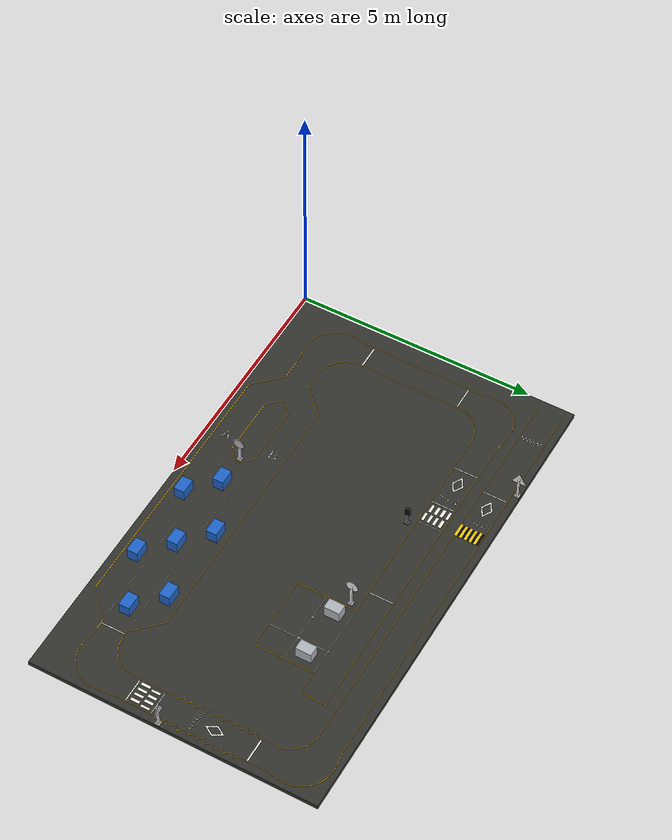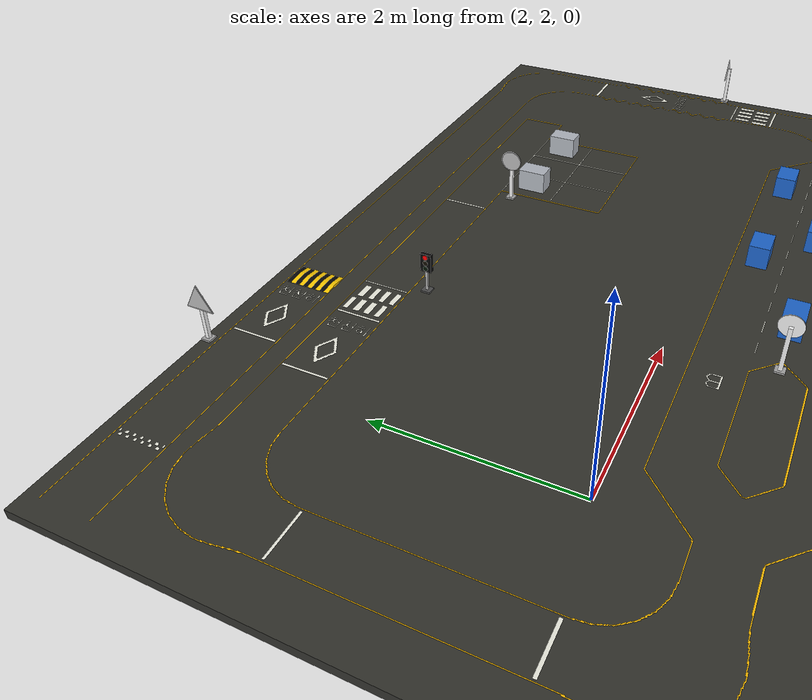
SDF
<sdf version="1.6">
 <world name="kudos_track_2026">
  <gravity>0 0 -9.81</gravity>
  <physics name="default_physics" type="ode">
   <max_step_size>0.001</max_step_size>
   <real_time_update_rate>1000</real_time_update_rate>
  </physics>
  <scene>
   <ambient>0.6 0.6 0.6 1</ambient>
   <background>0.75 0.80 0.85 1</background>
   <shadows>true</shadows>
  </scene>
  <light name="arena_sun" type="directional">
   <pose>0 0 10 0 0 0</pose>
   <diffuse>0.8 0.8 0.8 1</diffuse>
   <specular>0.2 0.2 0.2 1</specular>
   <direction>-0.3 -0.4 -1</direction>
  </light>
  <model name="arena_ground">
   <static>true</static>
   <pose>5.0 3.0 -0.05 0 0 0</pose>
   <link name="link">
    <visual name="visual">
     <geometry><box><size>10.0 6.0 0.1</size></box></geometry>
     <material><ambient>0.20 0.20 0.18 1</ambient><diffuse>0.20 0.20 0.18 1</diffuse></material>
    </visual>
    <collision name="collision"><geometry><box><size>10.0 6.0 0.1</size></box></geometry></collision>
   </link>
  </model>
  <model name="track_paint">
   <static>true</static>
   <pose>0 0 0.002 0 0 0</pose>
   <link name="paint_link">
    <visual name="yellow_paint">
     <cast_shadows>false</cast_shadows>
     <geometry><mesh><uri>model://track_paint/meshes/yellow.dae</uri></mesh></geometry>
    </visual>
    <visual name="white_paint">
     <cast_shadows>false</cast_shadows>
     <geometry><mesh><uri>model://track_paint/meshes/white.dae</uri></mesh></geometry>
    </visual>
   </link>
  </model>
  <model name="traffic_car_01">
   <static>true</static>
   <pose>8.1 0.95 0.1255 0 0 3.141592653589793</pose>
   <link name="link">
    <visual name="visual">
     <geometry><box><size>0.322 0.22 0.251</size></box></geometry>
     <material><ambient>0.12 0.40 0.80 1</ambient><diffuse>0.12 0.40 0.80 1</diffuse></material>
    </visual>
    <collision name="collision"><geometry><box><size>0.322 0.22 0.251</size></box></geometry></collision>
   </link>
  </model>
  <model name="traffic_car_02">
   <static>true</static>
   <pose>7.55 1.47 0.1255 0 0 3.141592653589793</pose>
   <link name="link">
    <visual name="visual">
     <geometry><box><size>0.322 0.22 0.251</size></box></geometry>
     <material><ambient>0.12 0.40 0.80 1</ambient><diffuse>0.12 0.40 0.80 1</diffuse></material>
    </visual>
    <collision name="collision"><geometry><box><size>0.322 0.22 0.251</size></box></geometry></collision>
   </link>
  </model>
  <model name="traffic_car_03">
   <static>true</static>
   <pose>7.0 0.43 0.1255 0 0 3.141592653589793</pose>
   <link name="link">
    <visual name="visual">
     <geometry><box><size>0.322 0.22 0.251</size></box></geometry>
     <material><ambient>0.12 0.40 0.80 1</ambient><diffuse>0.12 0.40 0.80 1</diffuse></material>
    </visual>
    <collision name="collision"><geometry><box><size>0.322 0.22 0.251</size></box></geometry></collision>
   </link>
  </model>
  <model name="traffic_car_04">
   <static>true</static>
   <pose>6.45 0.95 0.1255 0 0 3.141592653589793</pose>
   <link name="link">
    <visual name="visual">
     <geometry><box><size>0.322 0.22 0.251</size></box></geometry>
     <material><ambient>0.12 0.40 0.80 1</ambient><diffuse>0.12 0.40 0.80 1</diffuse></material>
    </visual>
    <collision name="collision"><geometry><box><size>0.322 0.22 0.251</size></box></geometry></collision>
   </link>
  </model>
  <model name="traffic_car_05">
   <static>true</static>
   <pose>5.9 1.47 0.1255 0 0 3.141592653589793</pose>
   <link name="link">
    <visual name="visual">
     <geometry><box><size>0.322 0.22 0.251</size></box></geometry>
     <material><ambient>0.12 0.40 0.80 1</ambient><diffuse>0.12 0.40 0.80 1</diffuse></material>
    </visual>
    <collision name="collision"><geometry><box><size>0.322 0.22 0.251</size></box></geometry></collision>
   </link>
  </model>
  <model name="traffic_car_06">
   <static>true</static>
   <pose>5.35 0.43 0.1255 0 0 3.141592653589793</pose>
   <link name="link">
    <visual name="visual">
     <geometry><box><size>0.322 0.22 0.251</size></box></geometry>
     <material><ambient>0.12 0.40 0.80 1</ambient><diffuse>0.12 0.40 0.80 1</diffuse></material>
    </visual>
    <collision name="collision"><geometry><box><size>0.322 0.22 0.251</size></box></geometry></collision>
   </link>
  </model>
  <model name="traffic_car_07">
   <static>true</static>
   <pose>4.8 0.95 0.1255 0 0 3.141592653589793</pose>
   <link name="link">
    <visual name="visual">
     <geometry><box><size>0.322 0.22 0.251</size></box></geometry>
     <material><ambient>0.12 0.40 0.80 1</ambient><diffuse>0.12 0.40 0.80 1</diffuse></material>
    </visual>
    <collision name="collision"><geometry><box><size>0.322 0.22 0.251</size></box></geometry></collision>
   </link>
  </model>
  <model name="parking_car_left">
   <static>true</static>
   <pose>6.36 4.27 0.1255 0 0 -1.5707963267948966</pose>
   <link name="link">
    <visual name="visual">
     <geometry><box><size>0.322 0.22 0.251</size></box></geometry>
     <material><ambient>0.70 0.72 0.75 1</ambient><diffuse>0.70 0.72 0.75 1</diffuse></material>
    </visual>
    <collision name="collision"><geometry><box><size>0.322 0.22 0.251</size></box></geometry></collision>
   </link>
  </model>
  <model name="parking_car_right">
   <static>true</static>
   <pose>7.39 4.27 0.1255 0 0 -1.5707963267948966</pose>
   <link name="link">
    <visual name="visual">
     <geometry><box><size>0.322 0.22 0.251</size></box></geometry>
     <material><ambient>0.70 0.72 0.75 1</ambient><diffuse>0.70 0.72 0.75 1</diffuse></material>
    </visual>
    <collision name="collision"><geometry><box><size>0.322 0.22 0.251</size></box></geometry></collision>
   </link>
  </model>
  <model name="branch_sign_base">
   <static>true</static>
   <pose>4.15 0.95 0.01 0 0 0</pose>
   <link name="link">
    <visual name="visual">
     <geometry><box><size>0.1 0.1 0.02</size></box></geometry>
     <material><ambient>0.65 0.65 0.65 1</ambient><diffuse>0.65 0.65 0.65 1</diffuse></material>
    </visual>
    <collision name="collision"><geometry><box><size>0.1 0.1 0.02</size></box></geometry></collision>
   </link>
  </model>
  <model name="branch_sign_pole">
   <static>true</static>
   <pose>4.15 0.95 0.26 0 0 0</pose>
   <link name="link">
    <visual name="visual">
     <geometry><box><size>0.04 0.04 0.48</size></box></geometry>
     <material><ambient>0.95 0.95 0.95 1</ambient><diffuse>0.95 0.95 0.95 1</diffuse></material>
    </visual>
    <collision name="collision"><geometry><box><size>0.04 0.04 0.48</size></box></geometry></collision>
   </link>
  </model>
  <model name="parking_sign_base">
   <static>true</static>
   <pose>6.0 4.42 0.01 0 0 0</pose>
   <link name="link">
    <visual name="visual">
     <geometry><box><size>0.1 0.1 0.02</size></box></geometry>
     <material><ambient>0.65 0.65 0.65 1</ambient><diffuse>0.65 0.65 0.65 1</diffuse></material>
    </visual>
    <collision name="collision"><geometry><box><size>0.1 0.1 0.02</size></box></geometry></collision>
   </link>
  </model>
  <model name="parking_sign_pole">
   <static>true</static>
   <pose>6.0 4.42 0.26 0 0 0</pose>
   <link name="link">
    <visual name="visual">
     <geometry><box><size>0.04 0.04 0.48</size></box></geometry>
     <material><ambient>0.95 0.95 0.95 1</ambient><diffuse>0.95 0.95 0.95 1</diffuse></material>
    </visual>
    <collision name="collision"><geometry><box><size>0.04 0.04 0.48</size></box></geometry></collision>
   </link>
  </model>
  <model name="pedestrian_right_sign_base">
   <static>true</static>
   <pose>9.94 2.72 0.01 0 0 0</pose>
   <link name="link">
    <visual name="visual">
     <geometry><box><size>0.1 0.1 0.02</size></box></geometry>
     <material><ambient>0.65 0.65 0.65 1</ambient><diffuse>0.65 0.65 0.65 1</diffuse></material>
    </visual>
    <collision name="collision"><geometry><box><size>0.1 0.1 0.02</size></box></geometry></collision>
   </link>
  </model>
  <model name="pedestrian_right_sign_pole">
   <static>true</static>
   <pose>9.94 2.72 0.26 0 0 0</pose>
   <link name="link">
    <visual name="visual">
     <geometry><box><size>0.04 0.04 0.48</size></box></geometry>
     <material><ambient>0.95 0.95 0.95 1</ambient><diffuse>0.95 0.95 0.95 1</diffuse></material>
    </visual>
    <collision name="collision"><geometry><box><size>0.04 0.04 0.48</size></box></geometry></collision>
   </link>
  </model>
  <model name="bump_start_sign_base">
   <static>true</static>
   <pose>2.3 5.94 0.01 0 0 0</pose>
   <link name="link">
    <visual name="visual">
     <geometry><box><size>0.1 0.1 0.02</size></box></geometry>
     <material><ambient>0.65 0.65 0.65 1</ambient><diffuse>0.65 0.65 0.65 1</diffuse></material>
    </visual>
    <collision name="collision"><geometry><box><size>0.1 0.1 0.02</size></box></geometry></collision>
   </link>
  </model>
  <model name="bump_start_sign_pole">
   <static>true</static>
   <pose>2.3 5.94 0.26 0 0 0</pose>
   <link name="link">
    <visual name="visual">
     <geometry><box><size>0.04 0.04 0.48</size></box></geometry>
     <material><ambient>0.95 0.95 0.95 1</ambient><diffuse>0.95 0.95 0.95 1</diffuse></material>
    </visual>
    <collision name="collision"><geometry><box><size>0.04 0.04 0.48</size></box></geometry></collision>
   </link>
  </model>
  <model name="branch_sign_panel">
   <static>true</static>
   <pose>4.15 0.95 0.5 0 0 0.0</pose>
   <link name="panel_link">
    <visual name="disk_visual">
     <pose>0.025 0 0 0 1.5707963267948966 0</pose>
     <geometry><cylinder><radius>0.12</radius><length>0.01</length></cylinder></geometry>
     <material><ambient>0.95 0.95 0.95 1</ambient><diffuse>0.95 0.95 0.95 1</diffuse></material>
    </visual>
    <collision name="disk_collision">
     <pose>0.025 0 0 0 1.5707963267948966 0</pose>
     <geometry><cylinder><radius>0.12</radius><length>0.01</length></cylinder></geometry>
    </collision>
    <visual name="printed_face">
     <pose>0.030500000000000003 0 0 0 0 0</pose>
     <geometry><mesh><uri>model://sign_A/meshes/round_face.dae</uri></mesh></geometry>
     <material>
      <script>
       <uri>model://sign_A/materials/scripts</uri>
       <uri>model://sign_A/materials/textures</uri>
       <name>Kudos/Sign_A</name>
      </script>
     </material>
     <cast_shadows>false</cast_shadows>
    </visual>
   </link>
  </model>
  <model name="parking_sign_panel">
   <static>true</static>
   <pose>6.0 4.42 0.5 0 0 3.141592653589793</pose>
   <link name="panel_link">
    <visual name="disk_visual">
     <pose>0.025 0 0 0 1.5707963267948966 0</pose>
     <geometry><cylinder><radius>0.12</radius><length>0.01</length></cylinder></geometry>
     <material><ambient>0.95 0.95 0.95 1</ambient><diffuse>0.95 0.95 0.95 1</diffuse></material>
    </visual>
    <collision name="disk_collision">
     <pose>0.025 0 0 0 1.5707963267948966 0</pose>
     <geometry><cylinder><radius>0.12</radius><length>0.01</length></cylinder></geometry>
    </collision>
    <visual name="printed_face">
     <pose>0.030500000000000003 0 0 0 0 0</pose>
     <geometry><mesh><uri>model://sign_parking/meshes/round_face.dae</uri></mesh></geometry>
     <material>
      <script>
       <uri>model://sign_parking/materials/scripts</uri>
       <uri>model://sign_parking/materials/textures</uri>
       <name>Kudos/Sign_parking</name>
      </script>
     </material>
     <cast_shadows>false</cast_shadows>
    </visual>
   </link>
  </model>
  <model name="pedestrian_right_sign_panel">
   <static>true</static>
   <pose>9.94 2.72 0.5 0 0 1.5707963267948966</pose>
   <link name="panel_link">
    <visual name="disk_visual">
     <pose>0.025 0 0 0 0 0</pose>
     <geometry><mesh><uri>model://sign_pedestrian/meshes/triangle_body.stl</uri></mesh></geometry>
     <material><ambient>0.95 0.95 0.95 1</ambient><diffuse>0.95 0.95 0.95 1</diffuse></material>
    </visual>
    <collision name="disk_collision">
     <pose>0.025 0 0 0 0 0</pose>
     <geometry><mesh><uri>model://sign_pedestrian/meshes/triangle_body.stl</uri></mesh></geometry>
    </collision>
    <visual name="printed_face">
     <pose>0.030500000000000003 0 0 0 0 0</pose>
     <geometry><mesh><uri>model://sign_pedestrian/meshes/triangle_face.dae</uri></mesh></geometry>
     <material>
      <script>
       <uri>model://sign_pedestrian/materials/scripts</uri>
       <uri>model://sign_pedestrian/materials/textures</uri>
       <name>Kudos/Sign_pedestrian</name>
      </script>
     </material>
     <cast_shadows>false</cast_shadows>
    </visual>
   </link>
  </model>
  <model name="bump_start_sign_panel">
   <static>true</static>
   <pose>2.3 5.94 0.5 0 0 3.141592653589793</pose>
   <link name="panel_link">
    <visual name="disk_visual">
     <pose>0.025 0 0 0 0 0</pose>
     <geometry><mesh><uri>model://sign_bump/meshes/triangle_body.stl</uri></mesh></geometry>
     <material><ambient>0.95 0.95 0.95 1</ambient><diffuse>0.95 0.95 0.95 1</diffuse></material>
    </visual>
    <collision name="disk_collision">
     <pose>0.025 0 0 0 0 0</pose>
     <geometry><mesh><uri>model://sign_bump/meshes/triangle_body.stl</uri></mesh></geometry>
    </collision>
    <visual name="printed_face">
     <pose>0.030500000000000003 0 0 0 0 0</pose>
     <geometry><mesh><uri>model://sign_bump/meshes/triangle_face.dae</uri></mesh></geometry>
     <material>
      <script>
       <uri>model://sign_bump/materials/scripts</uri>
       <uri>model://sign_bump/materials/textures</uri>
       <name>Kudos/Sign_bump</name>
      </script>
     </material>
     <cast_shadows>false</cast_shadows>
    </visual>
   </link>
  </model>
  <model name="speed_bump">
   <static>true</static>
   <pose>3.55 5.58 0 0 0 0.0</pose>
   <link name="bump_link">
    <collision name="ramp_collision">
     <geometry><mesh><uri>model://speed_bump/meshes/bump.stl</uri><scale>0.3 0.5 0.015</scale></mesh></geometry>
    </collision>
    <visual name="stripe_0">
     <pose>0 -0.225 0 0 0 0</pose>
     <geometry><mesh><uri>model://speed_bump/meshes/bump.stl</uri><scale>0.3 0.05 0.015</scale></mesh></geometry>
     <material><ambient>1 0.8 0 1</ambient><diffuse>1 0.8 0 1</diffuse></material>
    </visual>
    <visual name="stripe_1">
     <pose>0 -0.175 0 0 0 0</pose>
     <geometry><mesh><uri>model://speed_bump/meshes/bump.stl</uri><scale>0.3 0.05 0.015</scale></mesh></geometry>
     <material><ambient>0.03 0.03 0.03 1</ambient><diffuse>0.03 0.03 0.03 1</diffuse></material>
    </visual>
    <visual name="stripe_2">
     <pose>0 -0.125 0 0 0 0</pose>
     <geometry><mesh><uri>model://speed_bump/meshes/bump.stl</uri><scale>0.3 0.05 0.015</scale></mesh></geometry>
     <material><ambient>1 0.8 0 1</ambient><diffuse>1 0.8 0 1</diffuse></material>
    </visual>
    <visual name="stripe_3">
     <pose>0 -0.07500000000000001 0 0 0 0</pose>
     <geometry><mesh><uri>model://speed_bump/meshes/bump.stl</uri><scale>0.3 0.05 0.015</scale></mesh></geometry>
     <material><ambient>0.03 0.03 0.03 1</ambient><diffuse>0.03 0.03 0.03 1</diffuse></material>
    </visual>
    <visual name="stripe_4">
     <pose>0 -0.024999999999999994 0 0 0 0</pose>
     <geometry><mesh><uri>model://speed_bump/meshes/bump.stl</uri><scale>0.3 0.05 0.015</scale></mesh></geometry>
     <material><ambient>1 0.8 0 1</ambient><diffuse>1 0.8 0 1</diffuse></material>
    </visual>
    <visual name="stripe_5">
     <pose>0 0.025000000000000022 0 0 0 0</pose>
     <geometry><mesh><uri>model://speed_bump/meshes/bump.stl</uri><scale>0.3 0.05 0.015</scale></mesh></geometry>
     <material><ambient>0.03 0.03 0.03 1</ambient><diffuse>0.03 0.03 0.03 1</diffuse></material>
    </visual>
    <visual name="stripe_6">
     <pose>0 0.07500000000000001 0 0 0 0</pose>
     <geometry><mesh><uri>model://speed_bump/meshes/bump.stl</uri><scale>0.3 0.05 0.015</scale></mesh></geometry>
     <material><ambient>1 0.8 0 1</ambient><diffuse>1 0.8 0 1</diffuse></material>
    </visual>
    <visual name="stripe_7">
     <pose>0 0.125 0 0 0 0</pose>
     <geometry><mesh><uri>model://speed_bump/meshes/bump.stl</uri><scale>0.3 0.05 0.015</scale></mesh></geometry>
     <material><ambient>0.03 0.03 0.03 1</ambient><diffuse>0.03 0.03 0.03 1</diffuse></material>
    </visual>
    <visual name="stripe_8">
     <pose>0 0.175 0 0 0 0</pose>
     <geometry><mesh><uri>model://speed_bump/meshes/bump.stl</uri><scale>0.3 0.05 0.015</scale></mesh></geometry>
     <material><ambient>1 0.8 0 1</ambient><diffuse>1 0.8 0 1</diffuse></material>
    </visual>
    <visual name="stripe_9">
     <pose>0 0.22499999999999998 0 0 0 0</pose>
     <geometry><mesh><uri>model://speed_bump/meshes/bump.stl</uri><scale>0.3 0.05 0.015</scale></mesh></geometry>
     <material><ambient>0.03 0.03 0.03 1</ambient><diffuse>0.03 0.03 0.03 1</diffuse></material>
    </visual>
   </link>
  </model>
  <model name="traffic_light_base">
   <static>true</static>
   <pose>3.88 4.43 0.01 0 0 0</pose>
   <link name="link">
    <visual name="visual">
     <geometry><box><size>0.1 0.1 0.02</size></box></geometry>
     <material><ambient>0.3 0.3 0.3 1</ambient><diffuse>0.3 0.3 0.3 1</diffuse></material>
    </visual>
    <collision name="collision"><geometry><box><size>0.1 0.1 0.02</size></box></geometry></collision>
   </link>
  </model>
  <model name="traffic_light_pole">
   <static>true</static>
   <pose>3.88 4.43 0.175 0 0 0</pose>
   <link name="link">
    <visual name="visual">
     <geometry><box><size>0.025 0.025 0.35</size></box></geometry>
     <material><ambient>0.7 0.7 0.7 1</ambient><diffuse>0.7 0.7 0.7 1</diffuse></material>
    </visual>
    <collision name="collision"><geometry><box><size>0.025 0.025 0.35</size></box></geometry></collision>
   </link>
  </model>
  <model name="traffic_light">
   <static>true</static>
   <pose>3.88 4.43 0.35 0 0 3.141592653589793</pose>
   <link name="signal_link">
    <visual name="visual">
     <geometry><box><size>0.045 0.12 0.205</size></box></geometry>
     <material><ambient>0.02 0.02 0.02 1</ambient><diffuse>0.02 0.02 0.02 1</diffuse></material>
    </visual>
    <collision name="collision"><geometry><box><size>0.045 0.12 0.205</size></box></geometry></collision>
    <visual name="lamp_RED">
     <pose>0.0245 0 0.065 0 1.5707963267948966 0</pose>
     <geometry><cylinder><radius>0.027</radius><length>.004</length></cylinder></geometry>
     <material>
      <ambient>1 0.01 0.01 1</ambient>
      <diffuse>1 0.01 0.01 1</diffuse>
      <emissive>1 0.01 0.01 1</emissive>
     </material>
    </visual>
    <visual name="lamp_YELLOW">
     <pose>0.0245 0 0 0 1.5707963267948966 0</pose>
     <geometry><cylinder><radius>0.027</radius><length>.004</length></cylinder></geometry>
     <material>
      <ambient>0.06 0.039 0.0006 1</ambient>
      <diffuse>0.06 0.039 0.0006 1</diffuse>
      <emissive>0 0 0 1</emissive>
     </material>
    </visual>
    <visual name="lamp_GREEN">
     <pose>0.0245 0 -0.065 0 1.5707963267948966 0</pose>
     <geometry><cylinder><radius>0.027</radius><length>.004</length></cylinder></geometry>
     <material>
      <ambient>0.0006 0.06 0.0006 1</ambient>
      <diffuse>0.0006 0.06 0.0006 1</diffuse>
      <emissive>0 0 0 1</emissive>
     </material>
    </visual>
   </link>
   <plugin name="traffic_light_driver" filename="libkudos_traffic_light.so"/>
  </model>
 </world>
</sdf>
